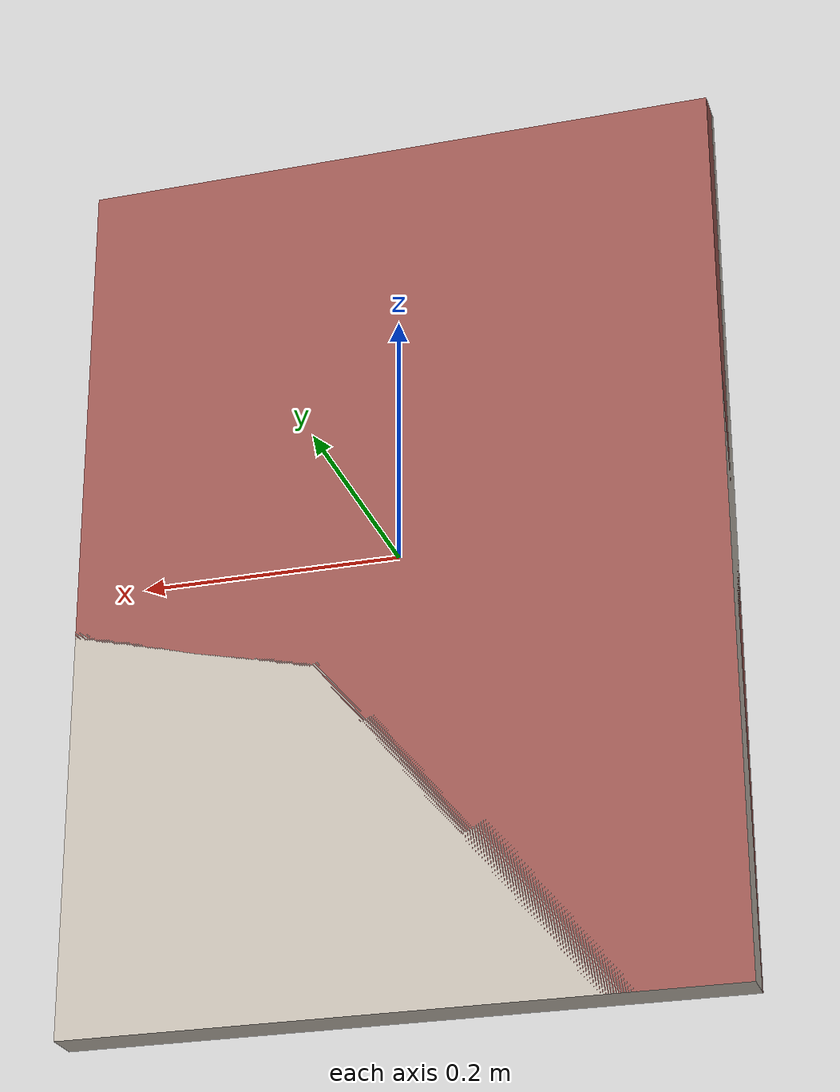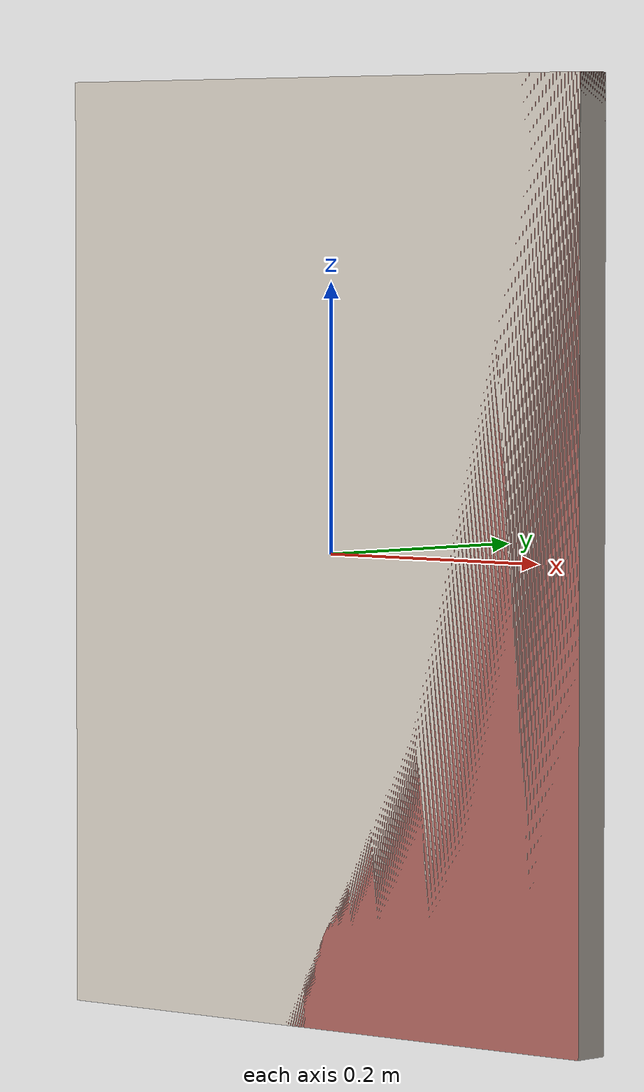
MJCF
<?xml version='1.0' encoding='UTF-8'?>
<mujoco model="model">
  <option timestep="0.002" gravity="0.0 0.0 -9.81"/>
  <compiler angle="radian"/>
  <asset>
    <mesh file="visuals/CabinetDoorPanel003.obj" name="CabinetDoorPanel003_vis"/>
    <texture file="visuals/T_BC001.png" name="tex" type="2d"/>
    <material name="mat" rgba="1 1 1 1.0" texture="tex" shininess="0.5" specular="0.3103448502657381"/>
  </asset>
  <default>
    <default class="visual">
      <geom conaffinity="0" contype="0" group="1" type="mesh"/>
    </default>
    <default class="collision">
      <geom group="0" rgba="0.5 0 0 0.5" density="1.0" solref="0.004 1" solimp="0.998 0.998 0.001"/>
    </default>
    <default class="spawn">
      <geom group="0" rgba="1 1 1 0.5" contype="0" conaffinity="0"/>
      <site group="0" rgba="1 1 1 0.5"/>
    </default>
    <default class="region">
      <geom group="1" conaffinity="0" contype="0" rgba="0 1 0 0" mass="0"/>
    </default>
  </default>
  <worldbody>
    <body>
      <body name="object">
        <geom mesh="CabinetDoorPanel003_vis" type="mesh" solimp="0.998 0.998 0.001" solref="0.001 1" friction="0.95 0.3 0.1" class="visual" material="mat"/>
        <geom type="box" pos="0.0 0.0 0.0" size="0.24999995529651642 0.014000007882714272 0.34999990463256836" quat="1.0 0.0 0.0 0.0" class="collision"/>
        <geom class="region" name="reg_main" type="box" pos="0.0 0.0 0.0" size="0.24999995529651642 0.014000007882714272 0.34999990463256836"/>
      </body>
    </body>
  </worldbody>
  <actuator/>
</mujoco>
